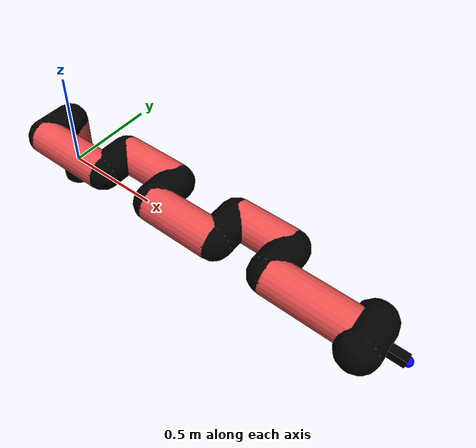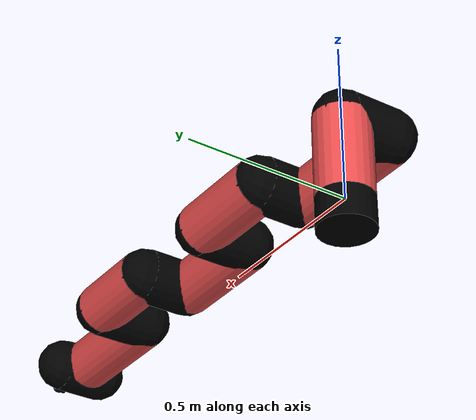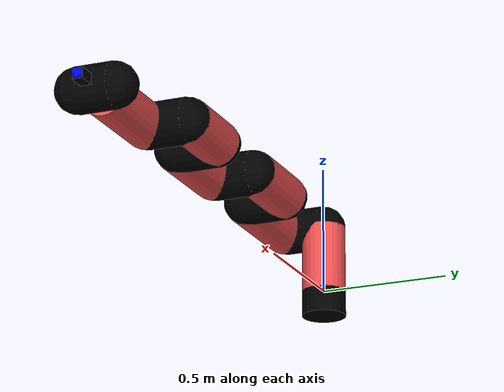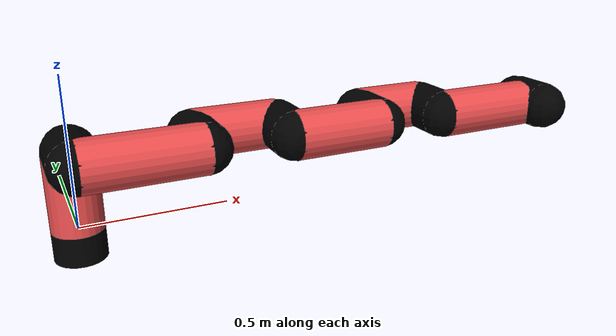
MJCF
<mujoco model="manipulator">
		<compiler angle="degree" coordinate="local" inertiafromgeom="auto" meshdir="meshes/"/>
		<option gravity="0 0 0" integrator="RK4" iterations="30" timestep="0.01"/>

		<default>
		<joint armature="1" limited="true" stiffness="10" damping="15" frictionloss="5.0"/>
		<geom conaffinity="1" condim="3" contype="1" friction=".5 .1 .1" margin="0.002"/>
		<motor ctrllimited="true"/>
		<position ctrllimited="true"/>
		</default>

		<asset>
		<texture builtin="gradient" height="100" rgb1="1.0 1.0 1.0" rgb2="1.0 1.0 1.0" type="skybox" width="100"/>
		<texture builtin="flat" height="32" name="arm_tex" rgb1="0.9 0.3 0.3" type="2d" width="32"/>
		<texture builtin="flat" height="32" name="gripper_tex" rgb1="0.0 0.0 0.0" type="cube" width="32"/>

		<material name="arm_mat" shininess="0.1" specular="0.1" texture="arm_tex"/>
		<material name="gripper_mat" shininess="1" specular="1" texture="gripper_tex"/>
		</asset>

		<worldbody>
		<light cutoff="45" diffuse=".8 .8 .8" dir="0 0.16 -1" directional="false" name="light" pos="0 -2.0 8.0" specular="0.3 0.3 0.3"/>

		<body name="base_link" pos="0 0 -0.1">
		<geom fromto="0 0 0 0 0 0.1" material="arm_mat" name="base_link" rgba="0.0 0.0 0.0 1" size="0.085" type="cylinder"/>
		</body>

		<body name="l1" pos="0 0 0">
<geom fromto="0 0 0 0 0 0.26" material="arm_mat" name="l1" rgba="0.9 0.3 0.3 1" size="0.085" type="cylinder"/>
<geom fromto="0 0 0.26 0 -0.16 0.26" material="arm_mat" name="l1_ex" rgba="0.0 0.0 0.0 1" size="0.085" type="capsule"/>
<joint axis="0 0 1" name="j1" pos="0 0 0" range="-90 90" damping="25.62" frictionloss="11.93"/>

<body name="l2" pos="0 -0.16 0.26">
<geom fromto="0 0 0 0.39 0 0" material="arm_mat" name="l2" rgba="0.9 0.3 0.3 1" size="0.085" type="cylinder"/>
<geom fromto="0.39 0 0 0.39 0.16 0" material="arm_mat" name="l2_ex" rgba="0.0 0.0 0.0 1" size="0.085" type="capsule"/>
<joint axis="-0.05 1.2 -0.23" name="j2" pos="0 0 0" range="-90 60" damping="34.96" frictionloss="10.12"/>

<body name="l3" pos="0.39 0.16 0">
<geom fromto="0 0 0 0.3 0 0" material="arm_mat" name="l3" rgba="0.9 0.3 0.3 1" size="0.085" type="cylinder"/>
<geom fromto="0.3 0 0 0.3 -0.16 0" material="arm_mat" name="l3_ex" rgba="0.0 0.0 0.0 1" size="0.085" type="capsule"/>
<joint axis="0.14 0.81 0.06" name="j3" pos="0 0 0" range="-30 60" damping="33.55" frictionloss="8.34"/>

<body name="l4" pos="0.3 -0.16 0">
<geom fromto="0 0 0 0.33 0 0" material="arm_mat" name="l4" rgba="0.9 0.3 0.3 1" size="0.085" type="cylinder"/>
<geom fromto="0.33 0 0 0.33 0.16 0" material="arm_mat" name="l4_ex" rgba="0.0 0.0 0.0 1" size="0.085" type="capsule"/>
<joint axis="-0.24 1.02 -0.25" name="j4" pos="0 0 0" range="-30 60" damping="34.73" frictionloss="8.85"/>

<body name="l5" pos="0.33 0.16 0">
<geom fromto="0 0 0 0.26 0 0" material="arm_mat" name="l5" rgba="0.9 0.3 0.3 1" size="0.085" type="cylinder"/>
<geom fromto="0.26 0 0 0.26 -0.16 0" material="arm_mat" name="l5_ex" rgba="0.0 0.0 0.0 1" size="0.085" type="capsule"/>
<joint axis="0.23 1.2 0.15" name="j5" pos="0 0 0" range="-30 60" damping="30.92" frictionloss="8.36"/>

<body name="l6" pos="0.26 -0.16 0">
<geom fromto="0 0 0 0.36 0 0" material="arm_mat" name="l6" rgba="0.9 0.3 0.3 1" size="0.085" type="cylinder"/>
<joint axis="0.21 0.82 -0.17" name="j6" pos="0 0 0" range="-30 60" damping="27.44" frictionloss="8.61"/>

<body name="gripper" pos="0.36 0 0">
<geom fromto="0.05 -0.07 0 0.05 0.07 0" material="gripper_mat" name="gripper" rgba="0.0 0.0 0.0 1" size="0.085" type="capsule"/><joint axis="1 0 0" name="j7" pos="0 0 0" range="-90 90" damping="15" frictionloss="5.0"/><body name="finger" pos="0.1 0 0">
<geom fromto="0 0.0 0 0.1 0.0 0" material="gripper_mat" name="finger" rgba="0.0 0.0 0.0 1" size="0.020 0.06 0.06" type="box"/>
</body>
<site name="current" pos="0.2 0. 0.0" rgba="0. 0. 1.0 1" size="0.02" type="sphere"/>
</body>
</body>
</body>
</body>
</body>
</body>
</body>
</worldbody>
<actuator>
<motor ctrllimited="true" ctrlrange="-1.0 1.0" joint="j1" gear="70.76"/>
<motor ctrllimited="true" ctrlrange="-1.0 1.0" joint="j2" gear="74.73"/>
<motor ctrllimited="true" ctrlrange="-1.0 1.0" joint="j3" gear="86.12"/>
<motor ctrllimited="true" ctrlrange="-1.0 1.0" joint="j4" gear="84.39"/>
<motor ctrllimited="true" ctrlrange="-1.0 1.0" joint="j5" gear="91.59"/>
<motor ctrllimited="true" ctrlrange="-1.0 1.0" joint="j6" gear="98.55"/>
<motor ctrllimited="true" ctrlrange="-1.0 1.0" joint="j7" gear="80"/>
</actuator>
</mujoco>
